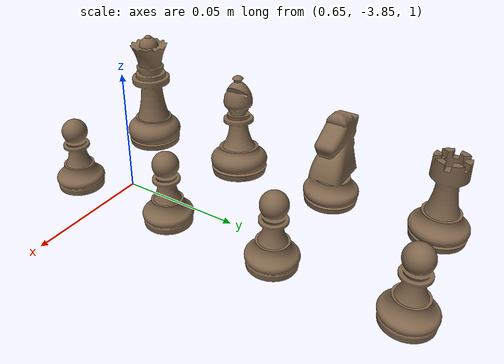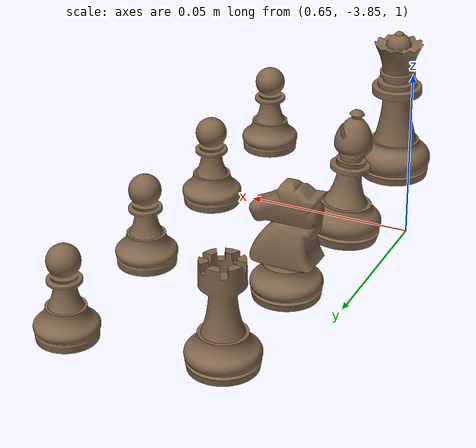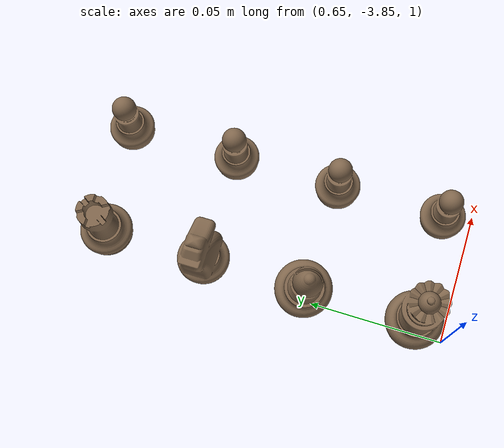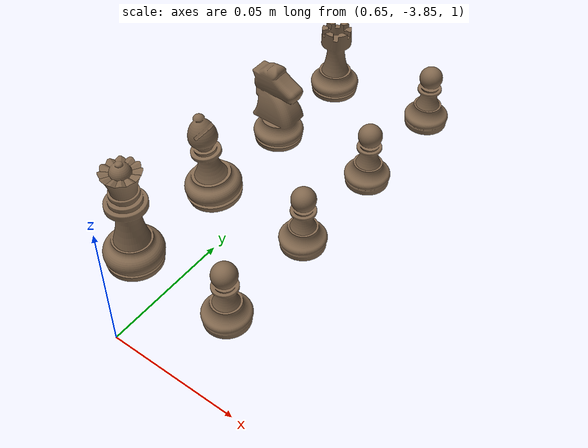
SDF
<sdf version="1.7">
 <world name="default">
  <model name="ground_plane">
   <static>1</static>
   <link name="link">
    <collision name="collision">
     <geometry><plane><normal>0 0 1</normal><size>100 100</size></plane></geometry>
     <surface>
      <contact><collide_bitmask>65535</collide_bitmask></contact>
      <friction><ode><mu>100</mu><mu2>50</mu2></ode></friction>
     </surface>
    </collision>
    <visual name="visual">
     <cast_shadows>0</cast_shadows>
     <geometry><plane><normal>0 0 1</normal><size>100 100</size></plane></geometry>
     <material>
      <script><uri>file://media/materials/scripts/gazebo.material</uri><name>Gazebo/Grey</name></script>
     </material>
    </visual>
   </link>
  </model>
  <model name="queen_white">
   <static>0</static>
   <link name="link_0">
    <inertial>
     <mass>0.01</mass>
     <inertia><ixx>1e-06</ixx><ixy>0</ixy><ixz>0</ixz><iyy>1e-06</iyy><iyz>0</iyz><izz>5e-07</izz></inertia>
    </inertial>
    <visual name="visual">
     <geometry><mesh><uri>model://queen_white/meshes/queen.dae</uri><scale>1 1 1</scale></mesh></geometry>
     <material>
      <lighting>1</lighting>
      <script><uri>file://media/materials/scripts/gazebo.material</uri><name>Gazebo/Grey</name></script>
      <shader type="vertex"><normal_map>__default__</normal_map></shader>
      <ambient>1 0.894 0.71 1</ambient>
      <diffuse>0.5 0.4 0.3 1</diffuse>
      <specular>0.01 0.01 0.01 1</specular>
      <emissive>0 0 0 1</emissive>
     </material>
    </visual>
    <collision name="collision">
     <pose>0 0 0.005 0 -0 0</pose>
     <geometry><box><size>0.02 0.02 0.01</size></box></geometry>
     <surface>
      <friction>
       <ode><mu>1</mu><mu2>1</mu2><fdir1>0 0 0</fdir1><slip1>0</slip1><slip2>0</slip2></ode>
       <torsional>
        <coefficient>1</coefficient>
        <patch_radius>0</patch_radius>
        <surface_radius>0</surface_radius>
        <use_patch_radius>1</use_patch_radius>
        <ode><slip>0</slip></ode>
       </torsional>
      </friction>
      <bounce><restitution_coefficient>0</restitution_coefficient><threshold>1e+06</threshold></bounce>
      <contact>
       <collide_without_contact>0</collide_without_contact>
       <collide_without_contact_bitmask>1</collide_without_contact_bitmask>
       <collide_bitmask>1</collide_bitmask>
       <ode>
        <soft_cfm>0</soft_cfm>
        <soft_erp>0.2</soft_erp>
        <kp>1e+13</kp>
        <kd>1</kd>
        <max_vel>0.01</max_vel>
        <min_depth>0</min_depth>
       </ode>
       <bullet>
        <split_impulse>1</split_impulse>
        <split_impulse_penetration_threshold>-0.01</split_impulse_penetration_threshold>
        <soft_cfm>0</soft_cfm>
        <soft_erp>0.2</soft_erp>
        <kp>1e+13</kp>
        <kd>1</kd>
       </bullet>
      </contact>
     </surface>
    </collision>
   </link>
   <static>0</static>
   <pose>0.64959 -3.83568 1.02612 0 0 0</pose>
  </model>
  <model name="bishop_white">
   <static>0</static>
   <link name="link_0">
    <inertial>
     <mass>0.01</mass>
     <inertia><ixx>1e-06</ixx><ixy>0</ixy><ixz>0</ixz><iyy>1e-06</iyy><iyz>0</iyz><izz>5e-07</izz></inertia>
    </inertial>
    <visual name="visual">
     <geometry><mesh><uri>model://bishop_white/meshes/bishop.dae</uri><scale>1 1 1</scale></mesh></geometry>
     <material>
      <lighting>1</lighting>
      <script><uri>file://media/materials/scripts/gazebo.material</uri><name>Gazebo/Grey</name></script>
      <shader type="vertex"><normal_map>__default__</normal_map></shader>
      <ambient>1 0.894 0.71 1</ambient>
      <diffuse>0.5 0.4 0.3 1</diffuse>
      <specular>0.01 0.01 0.01 1</specular>
      <emissive>0 0 0 1</emissive>
     </material>
    </visual>
    <collision name="collision">
     <pose>0 0 0.005 0 -0 0</pose>
     <geometry><box><size>0.02 0.02 0.01</size></box></geometry>
     <surface>
      <friction>
       <ode><mu>1</mu><mu2>1</mu2><fdir1>0 0 0</fdir1><slip1>0</slip1><slip2>0</slip2></ode>
       <torsional>
        <coefficient>1</coefficient>
        <patch_radius>0</patch_radius>
        <surface_radius>0</surface_radius>
        <use_patch_radius>1</use_patch_radius>
        <ode><slip>0</slip></ode>
       </torsional>
      </friction>
      <bounce><restitution_coefficient>0</restitution_coefficient><threshold>1e+06</threshold></bounce>
      <contact>
       <collide_without_contact>0</collide_without_contact>
       <collide_without_contact_bitmask>1</collide_without_contact_bitmask>
       <collide_bitmask>1</collide_bitmask>
       <ode>
        <soft_cfm>0</soft_cfm>
        <soft_erp>0.2</soft_erp>
        <kp>1e+13</kp>
        <kd>1</kd>
        <max_vel>0.01</max_vel>
        <min_depth>0</min_depth>
       </ode>
       <bullet>
        <split_impulse>1</split_impulse>
        <split_impulse_penetration_threshold>-0.01</split_impulse_penetration_threshold>
        <soft_cfm>0</soft_cfm>
        <soft_erp>0.2</soft_erp>
        <kp>1e+13</kp>
        <kd>1</kd>
       </bullet>
      </contact>
     </surface>
    </collision>
   </link>
   <static>0</static>
   <pose>0.649592 -3.79638 1.02517 0.073436 -0.073134 -0.004369</pose>
  </model>
  <model name="knight_white_clone">
   <static>0</static>
   <link name="link_0">
    <inertial>
     <mass>0.01</mass>
     <inertia><ixx>1e-06</ixx><ixy>0</ixy><ixz>0</ixz><iyy>1e-06</iyy><iyz>0</iyz><izz>5e-07</izz></inertia>
    </inertial>
    <visual name="visual">
     <geometry><mesh><uri>model://knight_white/meshes/knight.dae</uri><scale>1 1 1</scale></mesh></geometry>
     <material>
      <lighting>1</lighting>
      <script><uri>file://media/materials/scripts/gazebo.material</uri><name>Gazebo/Grey</name></script>
      <shader type="vertex"><normal_map>__default__</normal_map></shader>
      <ambient>1 0.894 0.71 1</ambient>
      <diffuse>0.5 0.4 0.3 1</diffuse>
      <specular>0.01 0.01 0.01 1</specular>
      <emissive>0 0 0 1</emissive>
     </material>
    </visual>
    <collision name="collision">
     <pose>0 0 0.005 0 -0 0</pose>
     <geometry><box><size>0.018 0.018 0.01</size></box></geometry>
     <surface>
      <friction>
       <ode><mu>1</mu><mu2>1</mu2><fdir1>0 0 0</fdir1><slip1>0</slip1><slip2>0</slip2></ode>
       <torsional>
        <coefficient>1</coefficient>
        <patch_radius>0</patch_radius>
        <surface_radius>0</surface_radius>
        <use_patch_radius>1</use_patch_radius>
        <ode><slip>0</slip></ode>
       </torsional>
      </friction>
      <bounce><restitution_coefficient>0</restitution_coefficient><threshold>1e+06</threshold></bounce>
      <contact>
       <collide_without_contact>0</collide_without_contact>
       <collide_without_contact_bitmask>1</collide_without_contact_bitmask>
       <collide_bitmask>1</collide_bitmask>
       <ode>
        <soft_cfm>0</soft_cfm>
        <soft_erp>0.2</soft_erp>
        <kp>1e+13</kp>
        <kd>1</kd>
        <max_vel>0.01</max_vel>
        <min_depth>0</min_depth>
       </ode>
       <bullet>
        <split_impulse>1</split_impulse>
        <split_impulse_penetration_threshold>-0.01</split_impulse_penetration_threshold>
        <soft_cfm>0</soft_cfm>
        <soft_erp>0.2</soft_erp>
        <kp>1e+13</kp>
        <kd>1</kd>
       </bullet>
      </contact>
     </surface>
    </collision>
   </link>
   <static>0</static>
   <pose>0.649681 -3.76045 1.02612 0 0 1.57236</pose>
  </model>
  <model name="rook_white">
   <static>0</static>
   <link name="link_0">
    <inertial>
     <mass>0.01</mass>
     <inertia><ixx>1e-06</ixx><ixy>0</ixy><ixz>0</ixz><iyy>1e-06</iyy><iyz>0</iyz><izz>5e-07</izz></inertia>
    </inertial>
    <visual name="visual">
     <geometry><mesh><uri>model://rook_white/meshes/rook.dae</uri><scale>1 1 1</scale></mesh></geometry>
     <material>
      <lighting>1</lighting>
      <script><uri>file://media/materials/scripts/gazebo.material</uri><name>Gazebo/Grey</name></script>
      <shader type="vertex"><normal_map>__default__</normal_map></shader>
      <ambient>1 0.894 0.71 1</ambient>
      <diffuse>0.5 0.4 0.3 1</diffuse>
      <specular>0.01 0.01 0.01 1</specular>
      <emissive>0 0 0 1</emissive>
     </material>
    </visual>
    <collision name="collision">
     <pose>0 0 0.005 0 -0 0</pose>
     <geometry><box><size>0.018 0.018 0.01</size></box></geometry>
     <surface>
      <friction>
       <ode><mu>1</mu><mu2>1</mu2><fdir1>0 0 0</fdir1><slip1>0</slip1><slip2>0</slip2></ode>
       <torsional>
        <coefficient>1</coefficient>
        <patch_radius>0</patch_radius>
        <surface_radius>0</surface_radius>
        <use_patch_radius>1</use_patch_radius>
        <ode><slip>0</slip></ode>
       </torsional>
      </friction>
      <bounce><restitution_coefficient>0</restitution_coefficient><threshold>1e+06</threshold></bounce>
      <contact>
       <collide_without_contact>0</collide_without_contact>
       <collide_without_contact_bitmask>1</collide_without_contact_bitmask>
       <collide_bitmask>1</collide_bitmask>
       <ode>
        <soft_cfm>0</soft_cfm>
        <soft_erp>0.2</soft_erp>
        <kp>1e+13</kp>
        <kd>1</kd>
        <max_vel>0.01</max_vel>
        <min_depth>0</min_depth>
       </ode>
       <bullet>
        <split_impulse>1</split_impulse>
        <split_impulse_penetration_threshold>-0.01</split_impulse_penetration_threshold>
        <soft_cfm>0</soft_cfm>
        <soft_erp>0.2</soft_erp>
        <kp>1e+13</kp>
        <kd>1</kd>
       </bullet>
      </contact>
     </surface>
    </collision>
   </link>
   <static>0</static>
   <pose>0.64949 -3.72491 1.02612 0 0 -0</pose>
  </model>
  <model name="pawn_white">
   <static>0</static>
   <link name="link_0">
    <inertial>
     <mass>0.01</mass>
     <inertia><ixx>1e-06</ixx><ixy>0</ixy><ixz>0</ixz><iyy>1e-06</iyy><iyz>0</iyz><izz>5e-07</izz></inertia>
    </inertial>
    <visual name="visual">
     <geometry><mesh><uri>model://pawn_white/meshes/pawn.dae</uri><scale>1 1 1</scale></mesh></geometry>
     <material>
      <lighting>1</lighting>
      <script><uri>file://media/materials/scripts/gazebo.material</uri><name>Gazebo/Grey</name></script>
      <shader type="vertex"><normal_map>__default__</normal_map></shader>
      <ambient>1 0.894 0.71 1</ambient>
      <diffuse>0.5 0.4 0.3 1</diffuse>
      <specular>0.01 0.01 0.01 1</specular>
      <emissive>0 0 0 1</emissive>
     </material>
    </visual>
    <collision name="collision">
     <pose>0 0 0.005 0 -0 0</pose>
     <geometry><box><size>0.016 0.016 0.01</size></box></geometry>
     <surface>
      <friction>
       <ode><mu>1</mu><mu2>1</mu2><fdir1>0 0 0</fdir1><slip1>0</slip1><slip2>0</slip2></ode>
       <torsional>
        <coefficient>1</coefficient>
        <patch_radius>0</patch_radius>
        <surface_radius>0</surface_radius>
        <use_patch_radius>1</use_patch_radius>
        <ode><slip>0</slip></ode>
       </torsional>
      </friction>
      <bounce><restitution_coefficient>0</restitution_coefficient><threshold>1e+06</threshold></bounce>
      <contact>
       <collide_without_contact>0</collide_without_contact>
       <collide_without_contact_bitmask>1</collide_without_contact_bitmask>
       <collide_bitmask>1</collide_bitmask>
       <ode>
        <soft_cfm>0</soft_cfm>
        <soft_erp>0.2</soft_erp>
        <kp>1e+13</kp>
        <kd>1</kd>
        <max_vel>0.01</max_vel>
        <min_depth>0</min_depth>
       </ode>
       <bullet>
        <split_impulse>1</split_impulse>
        <split_impulse_penetration_threshold>-0.01</split_impulse_penetration_threshold>
        <soft_cfm>0</soft_cfm>
        <soft_erp>0.2</soft_erp>
        <kp>1e+13</kp>
        <kd>1</kd>
       </bullet>
      </contact>
     </surface>
    </collision>
   </link>
   <static>0</static>
   <pose>0.688245 -3.83616 1.02612 0 0 -0</pose>
  </model>
  <model name="pawn_white_clone">
   <static>0</static>
   <link name="link_0">
    <inertial>
     <mass>0.01</mass>
     <inertia><ixx>1e-06</ixx><ixy>0</ixy><ixz>0</ixz><iyy>1e-06</iyy><iyz>0</iyz><izz>5e-07</izz></inertia>
    </inertial>
    <visual name="visual">
     <geometry><mesh><uri>model://pawn_white/meshes/pawn.dae</uri><scale>1 1 1</scale></mesh></geometry>
     <material>
      <lighting>1</lighting>
      <script><uri>file://media/materials/scripts/gazebo.material</uri><name>Gazebo/Grey</name></script>
      <shader type="vertex"><normal_map>__default__</normal_map></shader>
      <ambient>1 0.894 0.71 1</ambient>
      <diffuse>0.5 0.4 0.3 1</diffuse>
      <specular>0.01 0.01 0.01 1</specular>
      <emissive>0 0 0 1</emissive>
     </material>
    </visual>
    <collision name="collision">
     <pose>0 0 0.005 0 -0 0</pose>
     <geometry><box><size>0.016 0.016 0.01</size></box></geometry>
     <surface>
      <friction>
       <ode><mu>1</mu><mu2>1</mu2><fdir1>0 0 0</fdir1><slip1>0</slip1><slip2>0</slip2></ode>
       <torsional>
        <coefficient>1</coefficient>
        <patch_radius>0</patch_radius>
        <surface_radius>0</surface_radius>
        <use_patch_radius>1</use_patch_radius>
        <ode><slip>0</slip></ode>
       </torsional>
      </friction>
      <bounce><restitution_coefficient>0</restitution_coefficient><threshold>1e+06</threshold></bounce>
      <contact>
       <collide_without_contact>0</collide_without_contact>
       <collide_without_contact_bitmask>1</collide_without_contact_bitmask>
       <collide_bitmask>1</collide_bitmask>
       <ode>
        <soft_cfm>0</soft_cfm>
        <soft_erp>0.2</soft_erp>
        <kp>1e+13</kp>
        <kd>1</kd>
        <max_vel>0.01</max_vel>
        <min_depth>0</min_depth>
       </ode>
       <bullet>
        <split_impulse>1</split_impulse>
        <split_impulse_penetration_threshold>-0.01</split_impulse_penetration_threshold>
        <soft_cfm>0</soft_cfm>
        <soft_erp>0.2</soft_erp>
        <kp>1e+13</kp>
        <kd>1</kd>
       </bullet>
      </contact>
     </surface>
    </collision>
   </link>
   <static>0</static>
   <pose>0.688245 -3.79784 1.02612 0 0 -0</pose>
  </model>
  <model name="pawn_white_clone_4">
   <static>0</static>
   <link name="link_0">
    <inertial>
     <mass>0.01</mass>
     <inertia><ixx>1e-06</ixx><ixy>0</ixy><ixz>0</ixz><iyy>1e-06</iyy><iyz>0</iyz><izz>5e-07</izz></inertia>
    </inertial>
    <visual name="visual">
     <geometry><mesh><uri>model://pawn_white/meshes/pawn.dae</uri><scale>1 1 1</scale></mesh></geometry>
     <material>
      <lighting>1</lighting>
      <script><uri>file://media/materials/scripts/gazebo.material</uri><name>Gazebo/Grey</name></script>
      <shader type="vertex"><normal_map>__default__</normal_map></shader>
      <ambient>1 0.894 0.71 1</ambient>
      <diffuse>0.5 0.4 0.3 1</diffuse>
      <specular>0.01 0.01 0.01 1</specular>
      <emissive>0 0 0 1</emissive>
     </material>
    </visual>
    <collision name="collision">
     <pose>0 0 0.005 0 -0 0</pose>
     <geometry><box><size>0.016 0.016 0.01</size></box></geometry>
     <surface>
      <friction>
       <ode><mu>1</mu><mu2>1</mu2><fdir1>0 0 0</fdir1><slip1>0</slip1><slip2>0</slip2></ode>
       <torsional>
        <coefficient>1</coefficient>
        <patch_radius>0</patch_radius>
        <surface_radius>0</surface_radius>
        <use_patch_radius>1</use_patch_radius>
        <ode><slip>0</slip></ode>
       </torsional>
      </friction>
      <bounce><restitution_coefficient>0</restitution_coefficient><threshold>1e+06</threshold></bounce>
      <contact>
       <collide_without_contact>0</collide_without_contact>
       <collide_without_contact_bitmask>1</collide_without_contact_bitmask>
       <collide_bitmask>1</collide_bitmask>
       <ode>
        <soft_cfm>0</soft_cfm>
        <soft_erp>0.2</soft_erp>
        <kp>1e+13</kp>
        <kd>1</kd>
        <max_vel>0.01</max_vel>
        <min_depth>0</min_depth>
       </ode>
       <bullet>
        <split_impulse>1</split_impulse>
        <split_impulse_penetration_threshold>-0.01</split_impulse_penetration_threshold>
        <soft_cfm>0</soft_cfm>
        <soft_erp>0.2</soft_erp>
        <kp>1e+13</kp>
        <kd>1</kd>
       </bullet>
      </contact>
     </surface>
    </collision>
   </link>
   <static>0</static>
   <pose>0.688245 -3.76037 1.02612 0 0 -0</pose>
  </model>
  <model name="pawn_white_clone_5">
   <static>0</static>
   <link name="link_0">
    <inertial>
     <mass>0.01</mass>
     <inertia><ixx>1e-06</ixx><ixy>0</ixy><ixz>0</ixz><iyy>1e-06</iyy><iyz>0</iyz><izz>5e-07</izz></inertia>
    </inertial>
    <visual name="visual">
     <geometry><mesh><uri>model://pawn_white/meshes/pawn.dae</uri><scale>1 1 1</scale></mesh></geometry>
     <material>
      <lighting>1</lighting>
      <script><uri>file://media/materials/scripts/gazebo.material</uri><name>Gazebo/Grey</name></script>
      <shader type="vertex"><normal_map>__default__</normal_map></shader>
      <ambient>1 0.894 0.71 1</ambient>
      <diffuse>0.5 0.4 0.3 1</diffuse>
      <specular>0.01 0.01 0.01 1</specular>
      <emissive>0 0 0 1</emissive>
     </material>
    </visual>
    <collision name="collision">
     <pose>0 0 0.005 0 -0 0</pose>
     <geometry><box><size>0.016 0.016 0.01</size></box></geometry>
     <surface>
      <friction>
       <ode><mu>1</mu><mu2>1</mu2><fdir1>0 0 0</fdir1><slip1>0</slip1><slip2>0</slip2></ode>
       <torsional>
        <coefficient>1</coefficient>
        <patch_radius>0</patch_radius>
        <surface_radius>0</surface_radius>
        <use_patch_radius>1</use_patch_radius>
        <ode><slip>0</slip></ode>
       </torsional>
      </friction>
      <bounce><restitution_coefficient>0</restitution_coefficient><threshold>1e+06</threshold></bounce>
      <contact>
       <collide_without_contact>0</collide_without_contact>
       <collide_without_contact_bitmask>1</collide_without_contact_bitmask>
       <collide_bitmask>1</collide_bitmask>
       <ode>
        <soft_cfm>0</soft_cfm>
        <soft_erp>0.2</soft_erp>
        <kp>1e+13</kp>
        <kd>1</kd>
        <max_vel>0.01</max_vel>
        <min_depth>0</min_depth>
       </ode>
       <bullet>
        <split_impulse>1</split_impulse>
        <split_impulse_penetration_threshold>-0.01</split_impulse_penetration_threshold>
        <soft_cfm>0</soft_cfm>
        <soft_erp>0.2</soft_erp>
        <kp>1e+13</kp>
        <kd>1</kd>
       </bullet>
      </contact>
     </surface>
    </collision>
   </link>
   <static>0</static>
   <pose>0.688245 -3.72086 1.02612 0 0 -0</pose>
  </model>
 </world>
</sdf>
